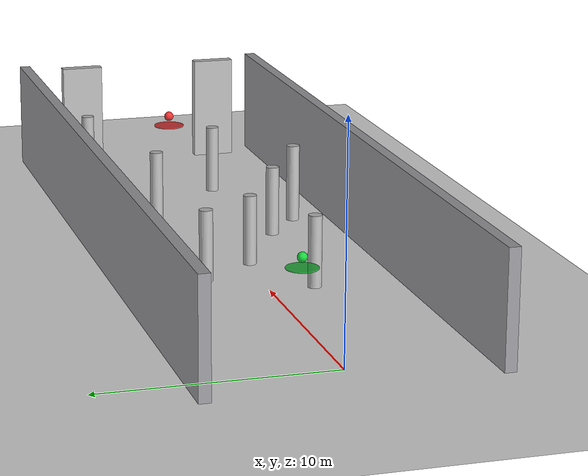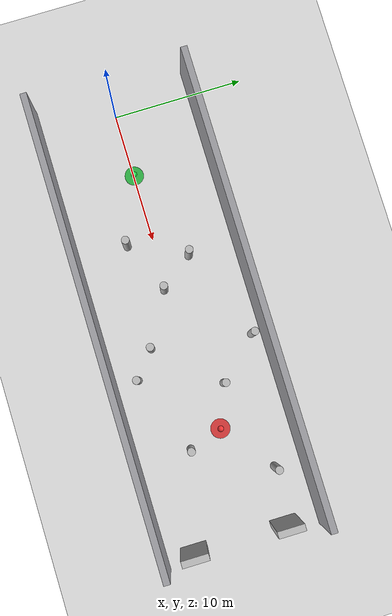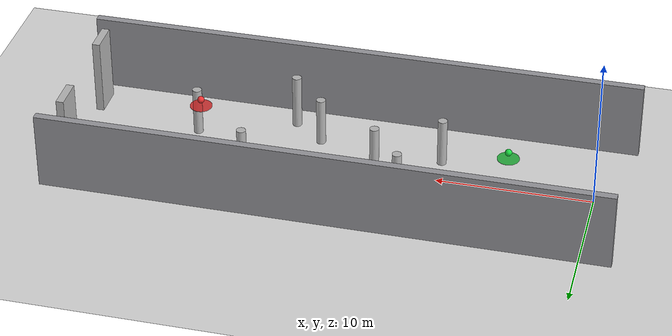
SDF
<sdf version="1.10">
 <world name="obstacle_avoidance">
  <physics type="ode">
   <max_step_size>0.0040000000000000001</max_step_size>
   <real_time_factor>1</real_time_factor>
   <real_time_update_rate>250</real_time_update_rate>
  </physics>
  <plugin name="gz::sim::systems::Physics" filename="gz-sim-physics-system"/>
  <plugin name="gz::sim::systems::UserCommands" filename="gz-sim-user-commands-system"/>
  <plugin name="gz::sim::systems::SceneBroadcaster" filename="gz-sim-scene-broadcaster-system"/>
  <plugin name="gz::sim::systems::Contact" filename="gz-sim-contact-system"/>
  <plugin name="gz::sim::systems::Imu" filename="gz-sim-imu-system"/>
  <plugin name="gz::sim::systems::AirPressure" filename="gz-sim-air-pressure-system"/>
  <plugin name="gz::sim::systems::AirSpeed" filename="gz-sim-air-speed-system"/>
  <plugin name="gz::sim::systems::ApplyLinkWrench" filename="gz-sim-apply-link-wrench-system"/>
  <plugin name="gz::sim::systems::NavSat" filename="gz-sim-navsat-system"/>
  <plugin name="gz::sim::systems::Magnetometer" filename="gz-sim-magnetometer-system"/>
  <plugin name="gz::sim::systems::Sensors" filename="gz-sim-sensors-system">
   <render_engine>ogre2</render_engine>
  </plugin>
  <plugin name="custom::OpticalFlowSystem" filename="libOpticalFlowSystem.so"/>
  <plugin name="custom::GstCameraSystem" filename="libGstCameraSystem.so"/>
  <gravity>0 0 -9.8000000000000007</gravity>
  <magnetic_field>6.0000000000000002e-06 2.3e-05 -4.1999999999999998e-05</magnetic_field>
  <atmosphere type="adiabatic"/>
  <scene>
   <grid>true</grid>
   <ambient>0.449999988 0.449999988 0.449999988 1</ambient>
   <background>0.74000001 0.769999981 0.819999993 1</background>
   <shadows>true</shadows>
  </scene>
  <spherical_coordinates>
   <surface_model>EARTH_WGS84</surface_model>
   <world_frame_orientation>ENU</world_frame_orientation>
   <latitude_deg>47.397971057728974</latitude_deg>
   <longitude_deg>8.5461637398001464</longitude_deg>
   <elevation>0</elevation>
   <heading_deg>0</heading_deg>
  </spherical_coordinates>
  <model name="ground_plane">
   <static>true</static>
   <link name="link">
    <collision name="collision">
     <geometry><plane><normal>0 0 1</normal><size>1 1</size></plane></geometry>
    </collision>
    <visual name="visual">
     <geometry><plane><normal>0 0 1</normal><size>120 120</size></plane></geometry>
     <material>
      <ambient>0.850000024 0.850000024 0.850000024 1</ambient>
      <diffuse>0.850000024 0.850000024 0.850000024 1</diffuse>
      <specular>0.400000006 0.400000006 0.400000006 1</specular>
     </material>
    </visual>
    <inertial>
     <mass>1</mass>
     <inertia><ixx>1</ixx><ixy>0</ixy><ixz>0</ixz><iyy>1</iyy><iyz>0</iyz><izz>1</izz></inertia>
    </inertial>
   </link>
  </model>
  <model name="lane_left_wall">
   <static>false</static>
   <pose>15.999709398175813 6.0256175516361052 2.4999875246117691 3.3057664207860395e-07 -1.2910359595228758e-10 -0.0011873662852001363</pose>
   <link name="link">
    <collision name="collision"><geometry><box><size>36 0.5 5</size></box></geometry></collision>
    <visual name="visual">
     <geometry><box><size>36 0.5 5</size></box></geometry>
     <material>
      <ambient>0.5 0.5 0.519999981 1</ambient>
      <diffuse>0.600000024 0.600000024 0.620000005 1</diffuse>
     </material>
    </visual>
    <inertial>
     <mass>1</mass>
     <inertia><ixx>1</ixx><ixy>0</ixy><ixz>0</ixz><iyy>1</iyy><iyz>0</iyz><izz>1</izz></inertia>
    </inertial>
   </link>
  </model>
  <model name="lane_right_wall">
   <static>false</static>
   <pose>16 -6 2.4999873987411871 -1.2772232356273819e-16 9.5017205798471489e-18 1.3757542690107612e-19</pose>
   <link name="link">
    <collision name="collision"><geometry><box><size>36 0.5 5</size></box></geometry></collision>
    <visual name="visual">
     <geometry><box><size>36 0.5 5</size></box></geometry>
     <material>
      <ambient>0.5 0.5 0.519999981 1</ambient>
      <diffuse>0.600000024 0.600000024 0.620000005 1</diffuse>
     </material>
    </visual>
    <inertial>
     <mass>1</mass>
     <inertia><ixx>1</ixx><ixy>0</ixy><ixz>0</ixz><iyy>1</iyy><iyz>0</iyz><izz>1</izz></inertia>
    </inertial>
   </link>
  </model>
  <model name="block_01">
   <static>false</static>
   <pose>19.060600566504633 5.0826219777990937 1.5999999989975142 1.7504999602068926e-07 -1.293554017736692e-09 1.9271653779650127e-08</pose>
   <link name="link">
    <collision name="collision">
     <geometry>
      <cylinder><radius>0.29999999999999999</radius><length>3.2000000000000002</length></cylinder>
     </geometry>
    </collision>
    <visual name="visual">
     <geometry>
      <cylinder><radius>0.29999999999999999</radius><length>3.2000000000000002</length></cylinder>
     </geometry>
    </visual>
    <inertial>
     <mass>1</mass>
     <inertia><ixx>1</ixx><ixy>0</ixy><ixz>0</ixz><iyy>1</iyy><iyz>0</iyz><izz>1</izz></inertia>
    </inertial>
   </link>
  </model>
  <model name="block_02">
   <static>false</static>
   <pose>10 -2 1.5999991336223707 -2.4656638708241914e-17 2.5742117864282655e-17 -1.2283136786083452e-19</pose>
   <link name="link">
    <collision name="collision">
     <geometry>
      <cylinder><radius>0.29999999999999999</radius><length>3.2000000000000002</length></cylinder>
     </geometry>
    </collision>
    <visual name="visual">
     <geometry>
      <cylinder><radius>0.29999999999999999</radius><length>3.2000000000000002</length></cylinder>
     </geometry>
    </visual>
    <inertial>
     <mass>1</mass>
     <inertia><ixx>1</ixx><ixy>0</ixy><ixz>0</ixz><iyy>1</iyy><iyz>0</iyz><izz>1</izz></inertia>
    </inertial>
   </link>
  </model>
  <model name="block_03">
   <static>false</static>
   <pose>14 -0.27238082885742188 1.506046126758112 -3.047247681849999e-16 3.9750388551066777e-16 -9.0198127992293974e-19</pose>
   <link name="link">
    <collision name="collision">
     <geometry>
      <cylinder><radius>0.29999999999999999</radius><length>3.2000000000000002</length></cylinder>
     </geometry>
    </collision>
    <visual name="visual">
     <geometry>
      <cylinder><radius>0.29999999999999999</radius><length>3.2000000000000002</length></cylinder>
     </geometry>
    </visual>
    <inertial>
     <mass>1</mass>
     <inertia><ixx>1</ixx><ixy>0</ixy><ixz>0</ixz><iyy>1</iyy><iyz>0</iyz><izz>1</izz></inertia>
    </inertial>
   </link>
  </model>
  <model name="block_04">
   <static>false</static>
   <pose>18 -2.5 1.5999998682091516 -1.4788667598453273e-16 8.4721107756964608e-17 -1.8256497920508446e-18</pose>
   <link name="link">
    <collision name="collision">
     <geometry>
      <cylinder><radius>0.29999999999999999</radius><length>3.2000000000000002</length></cylinder>
     </geometry>
    </collision>
    <visual name="visual">
     <geometry>
      <cylinder><radius>0.29999999999999999</radius><length>3.2000000000000002</length></cylinder>
     </geometry>
    </visual>
    <inertial>
     <mass>1</mass>
     <inertia><ixx>1</ixx><ixy>0</ixy><ixz>0</ixz><iyy>1</iyy><iyz>0</iyz><izz>1</izz></inertia>
    </inertial>
   </link>
  </model>
  <model name="block_05">
   <static>false</static>
   <pose>22 2 1.5999991336223707 4.9828659882484169e-17 4.31275027140564e-17 1.6374324327017893e-19</pose>
   <link name="link">
    <collision name="collision">
     <geometry>
      <cylinder><radius>0.29999999999999999</radius><length>3.2000000000000002</length></cylinder>
     </geometry>
    </collision>
    <visual name="visual">
     <geometry>
      <cylinder><radius>0.29999999999999999</radius><length>3.2000000000000002</length></cylinder>
     </geometry>
    </visual>
    <inertial>
     <mass>1</mass>
     <inertia><ixx>1</ixx><ixy>0</ixy><ixz>0</ixz><iyy>1</iyy><iyz>0</iyz><izz>1</izz></inertia>
    </inertial>
   </link>
  </model>
  <model name="block_06">
   <static>false</static>
   <pose>26 -1.8 1.5999998682091516 -5.2718210809088764e-17 1.2651731814549251e-16 6.3680309664652493e-18</pose>
   <link name="link">
    <collision name="collision">
     <geometry>
      <cylinder><radius>0.29999999999999999</radius><length>3.2000000000000002</length></cylinder>
     </geometry>
    </collision>
    <visual name="visual">
     <geometry>
      <cylinder><radius>0.29999999999999999</radius><length>3.2000000000000002</length></cylinder>
     </geometry>
    </visual>
    <inertial>
     <mass>1</mass>
     <inertia><ixx>1</ixx><ixy>0</ixy><ixz>0</ixz><iyy>1</iyy><iyz>0</iyz><izz>1</izz></inertia>
    </inertial>
   </link>
  </model>
  <model name="cyl_01">
   <static>false</static>
   <pose>12 2.2604265213012695 1.5999992089195469 1.7135860452299359e-17 -1.7093152208194623e-17 -2.0417613317443407e-19</pose>
   <link name="link">
    <collision name="collision">
     <geometry>
      <cylinder><radius>0.29999999999999999</radius><length>3.2000000000000002</length></cylinder>
     </geometry>
    </collision>
    <visual name="visual">
     <geometry>
      <cylinder><radius>0.29999999999999999</radius><length>3.2000000000000002</length></cylinder>
     </geometry>
    </visual>
    <inertial>
     <mass>1</mass>
     <inertia><ixx>1</ixx><ixy>0</ixy><ixz>0</ixz><iyy>1</iyy><iyz>0</iyz><izz>1</izz></inertia>
    </inertial>
   </link>
  </model>
  <model name="cyl_02">
   <static>false</static>
   <pose>20 -4.0999999999999996 1.7999992086633334 -5.95015447457351e-18 -7.1830272029298781e-18 8.102279845254366e-20</pose>
   <link name="link">
    <collision name="collision">
     <geometry>
      <cylinder><radius>0.29999999999999999</radius><length>3.6000000000000001</length></cylinder>
     </geometry>
    </collision>
    <visual name="visual">
     <geometry>
      <cylinder><radius>0.29999999999999999</radius><length>3.6000000000000001</length></cylinder>
     </geometry>
    </visual>
    <inertial>
     <mass>1</mass>
     <inertia><ixx>1</ixx><ixy>0</ixy><ixz>0</ixz><iyy>1</iyy><iyz>0</iyz><izz>1</izz></inertia>
    </inertial>
   </link>
  </model>
  <model name="cyl_03">
   <static>false</static>
   <pose>29 3.7999999999999998 1.6999992086633333 2.9183300555717811e-18 3.6794603956307752e-18 6.9962869253696579e-20</pose>
   <link name="link">
    <collision name="collision">
     <geometry>
      <cylinder><radius>0.29999999999999999</radius><length>3.3999999999999999</length></cylinder>
     </geometry>
    </collision>
    <visual name="visual">
     <geometry>
      <cylinder><radius>0.29999999999999999</radius><length>3.3999999999999999</length></cylinder>
     </geometry>
    </visual>
    <inertial>
     <mass>1</mass>
     <inertia><ixx>1</ixx><ixy>0</ixy><ixz>0</ixz><iyy>1</iyy><iyz>0</iyz><izz>1</izz></inertia>
    </inertial>
   </link>
  </model>
  <model name="start_marker">
   <static>true</static>
   <pose>5.4487199783325195 0 2.4134562015533447 0 0 0</pose>
   <link name="link">
    <gravity>false</gravity>
    <kinematic>true</kinematic>
    <visual name="base_ring">
     <geometry>
      <cylinder><radius>0.69999999999999996</radius><length>0.040000000000000001</length></cylinder>
     </geometry>
     <material>
      <ambient>0.100000001 0.699999988 0.200000003 0.850000024</ambient>
      <diffuse>0.100000001 0.699999988 0.200000003 0.850000024</diffuse>
      <specular>0.200000003 0.200000003 0.200000003 1</specular>
     </material>
    </visual>
    <visual name="center_sphere">
     <pose>0 0 0.45000000000000001 0 0 0</pose>
     <geometry><sphere><radius>0.22</radius></sphere></geometry>
     <material>
      <ambient>0.100000001 0.850000024 0.25 1</ambient>
      <diffuse>0.100000001 0.850000024 0.25 1</diffuse>
      <specular>0.300000012 0.300000012 0.300000012 1</specular>
     </material>
    </visual>
    <inertial>
     <mass>1</mass>
     <inertia><ixx>1</ixx><ixy>0</ixy><ixz>0</ixz><iyy>1</iyy><iyz>0</iyz><izz>1</izz></inertia>
    </inertial>
   </link>
  </model>
  <model name="goal_marker">
   <static>true</static>
   <pose>24.970458984375 0.63663697242736816 3.6890099048614502 0 0 0</pose>
   <link name="link">
    <gravity>false</gravity>
    <kinematic>true</kinematic>
    <visual name="base_ring">
     <geometry>
      <cylinder><radius>0.69999999999999996</radius><length>0.040000000000000001</length></cylinder>
     </geometry>
     <material>
      <ambient>0.850000024 0.150000006 0.150000006 0.850000024</ambient>
      <diffuse>0.850000024 0.150000006 0.150000006 0.850000024</diffuse>
      <specular>0.200000003 0.200000003 0.200000003 1</specular>
     </material>
    </visual>
    <visual name="center_sphere">
     <pose>0 0 0.45000000000000001 0 0 0</pose>
     <geometry><sphere><radius>0.22</radius></sphere></geometry>
     <material>
      <ambient>0.949999988 0.200000003 0.200000003 1</ambient>
      <diffuse>0.949999988 0.200000003 0.200000003 1</diffuse>
      <specular>0.300000012 0.300000012 0.300000012 1</specular>
     </material>
    </visual>
    <inertial>
     <mass>1</mass>
     <inertia><ixx>1</ixx><ixy>0</ixy><ixz>0</ixz><iyy>1</iyy><iyz>0</iyz><izz>1</izz></inertia>
    </inertial>
   </link>
  </model>
  <model name="goal_gate_left">
   <static>false</static>
   <pose>33 3.2410461902618408 2.4999999991915041 -3.6038115050999484e-20 -3.6718651322388412e-21 -4.6130338813905537e-21</pose>
   <link name="link">
    <collision name="collision"><geometry><box><size>0.5 2 5</size></box></geometry></collision>
    <visual name="visual"><geometry><box><size>0.5 2 5</size></box></geometry></visual>
    <inertial>
     <mass>1</mass>
     <inertia><ixx>1</ixx><ixy>0</ixy><ixz>0</ixz><iyy>1</iyy><iyz>0</iyz><izz>1</izz></inertia>
    </inertial>
   </link>
  </model>
  <model name="goal_gate_right">
   <static>false</static>
   <pose>33 -3.6785330772399902 2.4999999991915041 1.4843649161976952e-21 -3.8334171960254144e-20 -3.2847460496634877e-21</pose>
   <link name="link">
    <collision name="collision"><geometry><box><size>0.5 2 5</size></box></geometry></collision>
    <visual name="visual"><geometry><box><size>0.5 2 5</size></box></geometry></visual>
    <inertial>
     <mass>1</mass>
     <inertia><ixx>1</ixx><ixy>0</ixy><ixz>0</ixz><iyy>1</iyy><iyz>0</iyz><izz>1</izz></inertia>
    </inertial>
   </link>
  </model>
  <light name="sunUTC" type="directional">
   <pose>0 0 500 0 0 0</pose>
   <intensity>1</intensity>
   <direction>0.001 0.625 -0.78000000000000003</direction>
   <diffuse>0.899999976 0.899999976 0.899999976 1</diffuse>
   <specular>0.25 0.25 0.25 1</specular>
   <attenuation><range>2000</range><linear>0</linear><constant>1</constant><quadratic>0</quadratic></attenuation>
   <spot><inner_angle>0</inner_angle><outer_angle>0</outer_angle><falloff>0</falloff></spot>
  </light>
 </world>
</sdf>
